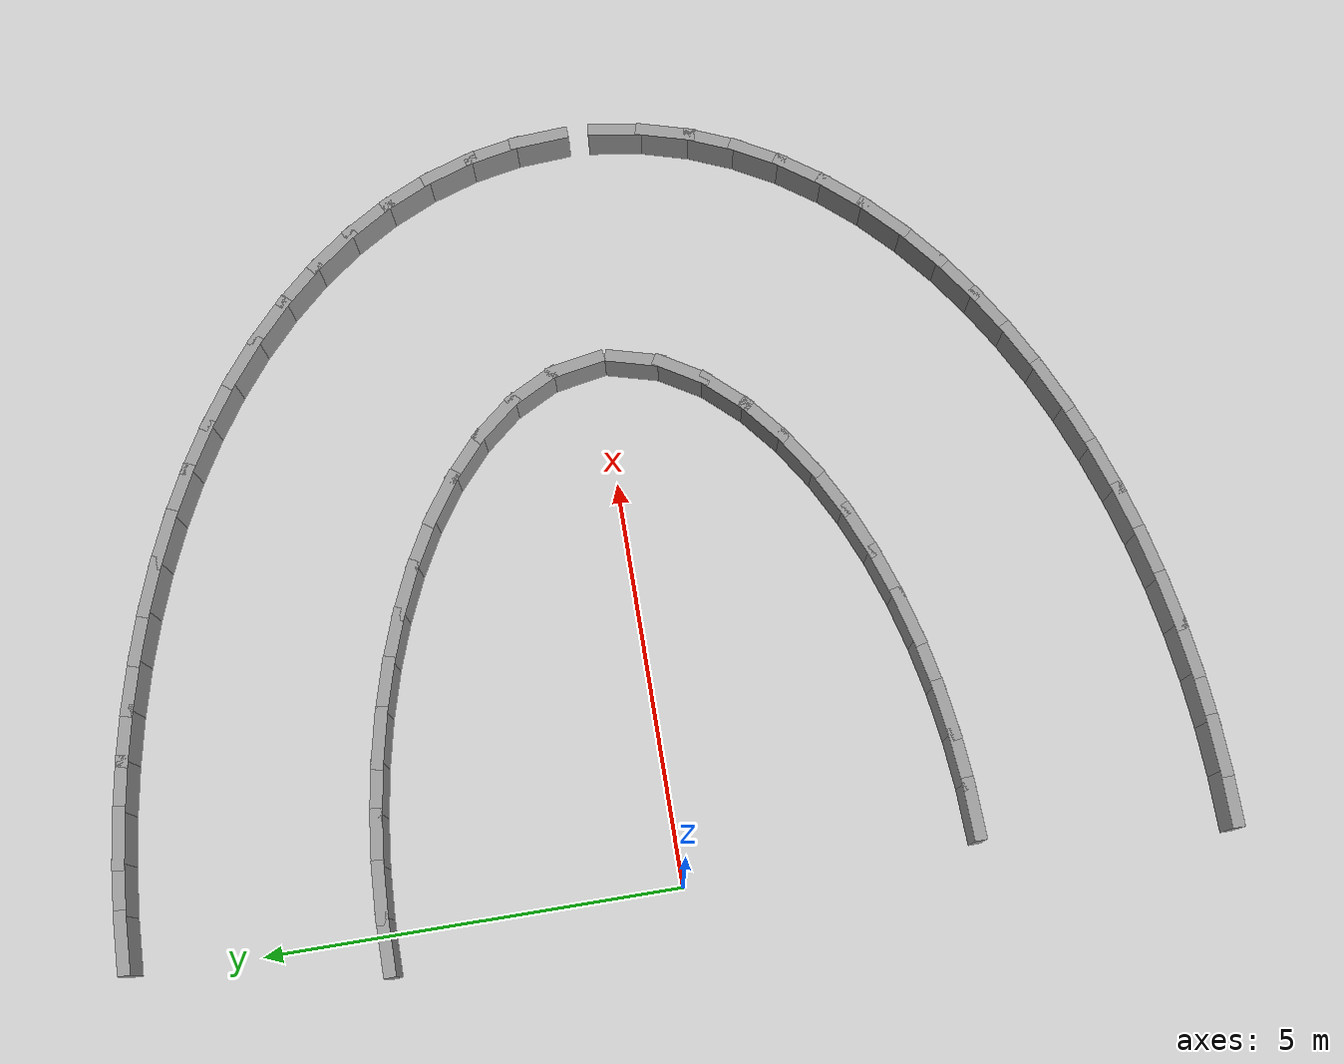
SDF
<sdf version="1.7">
 <world name="default">
  <model name="ground_plane">
   <static>1</static>
   <link name="link">
    <collision name="collision">
     <geometry><plane><normal>0 0 1</normal><size>100 100</size></plane></geometry>
     <surface><friction><ode><mu>100</mu><mu2>50</mu2></ode></friction></surface>
    </collision>
    <visual name="visual">
     <cast_shadows>0</cast_shadows>
     <geometry><plane><normal>0 0 1</normal><size>100 100</size></plane></geometry>
     <material>
      <script><uri>file://media/materials/scripts/gazebo.material</uri><name>Gazebo/Grey</name></script>
     </material>
    </visual>
   </link>
  </model>
  <model name="oval_loop">
   <link name="Wall_0">
    <collision name="Wall_0_Collision">
     <geometry><box><size>0.7470 0.1500 0.6000</size></box></geometry>
     <pose>0 0 0.3000 0 -0 0</pose>
    </collision>
    <visual name="Wall_0_Visual">
     <pose>0 0 0.3000 0 -0 0</pose>
     <geometry><box><size>0.7470 0.1500 0.6000</size></box></geometry>
     <material>
      <script><uri>file://media/materials/scripts/gazebo.material</uri><name>Gazebo/Grey</name></script>
      <ambient>1 1 1 1</ambient>
     </material>
    </visual>
    <pose>6.4471 0.2938 0 0 -0 1.74890</pose>
   </link>
   <link name="Wall_1">
    <collision name="Wall_1_Collision">
     <geometry><box><size>0.7484 0.1500 0.6000</size></box></geometry>
     <pose>0 0 0.3000 0 -0 0</pose>
    </collision>
    <visual name="Wall_1_Visual">
     <pose>0 0 0.3000 0 -0 0</pose>
     <geometry><box><size>0.7484 0.1500 0.6000</size></box></geometry>
     <material>
      <script><uri>file://media/materials/scripts/gazebo.material</uri><name>Gazebo/Grey</name></script>
      <ambient>1 1 1 1</ambient>
     </material>
    </visual>
    <pose>6.2561 0.8530 0 0 -0 2.05053</pose>
   </link>
   <link name="Wall_2">
    <collision name="Wall_2_Collision">
     <geometry><box><size>0.7492 0.1500 0.6000</size></box></geometry>
     <pose>0 0 0.3000 0 -0 0</pose>
    </collision>
    <visual name="Wall_2_Visual">
     <pose>0 0 0.3000 0 -0 0</pose>
     <geometry><box><size>0.7492 0.1500 0.6000</size></box></geometry>
     <material>
      <script><uri>file://media/materials/scripts/gazebo.material</uri><name>Gazebo/Grey</name></script>
      <ambient>1 1 1 1</ambient>
     </material>
    </visual>
    <pose>5.9261 1.3484 0 0 -0 2.26618</pose>
   </link>
   <link name="Wall_3">
    <collision name="Wall_3_Collision">
     <geometry><box><size>0.7495 0.1500 0.6000</size></box></geometry>
     <pose>0 0 0.3000 0 -0 0</pose>
    </collision>
    <visual name="Wall_3_Visual">
     <pose>0 0 0.3000 0 -0 0</pose>
     <geometry><box><size>0.7495 0.1500 0.6000</size></box></geometry>
     <material>
      <script><uri>file://media/materials/scripts/gazebo.material</uri><name>Gazebo/Grey</name></script>
      <ambient>1 1 1 1</ambient>
     </material>
    </visual>
    <pose>5.5084 1.7757 0 0 -0 2.42343</pose>
   </link>
   <link name="Wall_4">
    <collision name="Wall_4_Collision">
     <geometry><box><size>0.7497 0.1500 0.6000</size></box></geometry>
     <pose>0 0 0.3000 0 -0 0</pose>
    </collision>
    <visual name="Wall_4_Visual">
     <pose>0 0 0.3000 0 -0 0</pose>
     <geometry><box><size>0.7497 0.1500 0.6000</size></box></geometry>
     <material>
      <script><uri>file://media/materials/scripts/gazebo.material</uri><name>Gazebo/Grey</name></script>
      <ambient>1 1 1 1</ambient>
     </material>
    </visual>
    <pose>5.0346 2.1414 0 0 -0 2.54512</pose>
   </link>
   <link name="Wall_5">
    <collision name="Wall_5_Collision">
     <geometry><box><size>0.7498 0.1500 0.6000</size></box></geometry>
     <pose>0 0 0.3000 0 -0 0</pose>
    </collision>
    <visual name="Wall_5_Visual">
     <pose>0 0 0.3000 0 -0 0</pose>
     <geometry><box><size>0.7498 0.1500 0.6000</size></box></geometry>
     <material>
      <script><uri>file://media/materials/scripts/gazebo.material</uri><name>Gazebo/Grey</name></script>
      <ambient>1 1 1 1</ambient>
     </material>
    </visual>
    <pose>4.5230 2.4529 0 0 -0 2.64436</pose>
   </link>
   <link name="Wall_6">
    <collision name="Wall_6_Collision">
     <geometry><box><size>0.7498 0.1500 0.6000</size></box></geometry>
     <pose>0 0 0.3000 0 -0 0</pose>
    </collision>
    <visual name="Wall_6_Visual">
     <pose>0 0 0.3000 0 -0 0</pose>
     <geometry><box><size>0.7498 0.1500 0.6000</size></box></geometry>
     <material>
      <script><uri>file://media/materials/scripts/gazebo.material</uri><name>Gazebo/Grey</name></script>
      <ambient>1 1 1 1</ambient>
     </material>
    </visual>
    <pose>3.9847 2.7163 0 0 -0 2.72867</pose>
   </link>
   <link name="Wall_7">
    <collision name="Wall_7_Collision">
     <geometry><box><size>0.7499 0.1500 0.6000</size></box></geometry>
     <pose>0 0 0.3000 0 -0 0</pose>
    </collision>
    <visual name="Wall_7_Visual">
     <pose>0 0 0.3000 0 -0 0</pose>
     <geometry><box><size>0.7499 0.1500 0.6000</size></box></geometry>
     <material>
      <script><uri>file://media/materials/scripts/gazebo.material</uri><name>Gazebo/Grey</name></script>
      <ambient>1 1 1 1</ambient>
     </material>
    </visual>
    <pose>3.4271 2.9363 0 0 -0 2.80269</pose>
   </link>
   <link name="Wall_8">
    <collision name="Wall_8_Collision">
     <geometry><box><size>0.7499 0.1500 0.6000</size></box></geometry>
     <pose>0 0 0.3000 0 -0 0</pose>
    </collision>
    <visual name="Wall_8_Visual">
     <pose>0 0 0.3000 0 -0 0</pose>
     <geometry><box><size>0.7499 0.1500 0.6000</size></box></geometry>
     <material>
      <script><uri>file://media/materials/scripts/gazebo.material</uri><name>Gazebo/Grey</name></script>
      <ambient>1 1 1 1</ambient>
     </material>
    </visual>
    <pose>2.8553 3.1167 0 0 -0 2.86947</pose>
   </link>
   <link name="Wall_9">
    <collision name="Wall_9_Collision">
     <geometry><box><size>0.7499 0.1500 0.6000</size></box></geometry>
     <pose>0 0 0.3000 0 -0 0</pose>
    </collision>
    <visual name="Wall_9_Visual">
     <pose>0 0 0.3000 0 -0 0</pose>
     <geometry><box><size>0.7499 0.1500 0.6000</size></box></geometry>
     <material>
      <script><uri>file://media/materials/scripts/gazebo.material</uri><name>Gazebo/Grey</name></script>
      <ambient>1 1 1 1</ambient>
     </material>
    </visual>
    <pose>2.2731 3.2600 0 0 -0 2.93099</pose>
   </link>
   <link name="Wall_10">
    <collision name="Wall_10_Collision">
     <geometry><box><size>0.7499 0.1500 0.6000</size></box></geometry>
     <pose>0 0 0.3000 0 -0 0</pose>
    </collision>
    <visual name="Wall_10_Visual">
     <pose>0 0 0.3000 0 -0 0</pose>
     <geometry><box><size>0.7499 0.1500 0.6000</size></box></geometry>
     <material>
      <script><uri>file://media/materials/scripts/gazebo.material</uri><name>Gazebo/Grey</name></script>
      <ambient>1 1 1 1</ambient>
     </material>
    </visual>
    <pose>1.6833 3.3683 0 0 -0 2.98885</pose>
   </link>
   <link name="Wall_11">
    <collision name="Wall_11_Collision">
     <geometry><box><size>0.7499 0.1500 0.6000</size></box></geometry>
     <pose>0 0 0.3000 0 -0 0</pose>
    </collision>
    <visual name="Wall_11_Visual">
     <pose>0 0 0.3000 0 -0 0</pose>
     <geometry><box><size>0.7499 0.1500 0.6000</size></box></geometry>
     <material>
      <script><uri>file://media/materials/scripts/gazebo.material</uri><name>Gazebo/Grey</name></script>
      <ambient>1 1 1 1</ambient>
     </material>
    </visual>
    <pose>1.0883 3.4431 0 0 -0 3.04424</pose>
   </link>
   <link name="Wall_12">
    <collision name="Wall_12_Collision">
     <geometry><box><size>0.7499 0.1500 0.6000</size></box></geometry>
     <pose>0 0 0.3000 0 -0 0</pose>
    </collision>
    <visual name="Wall_12_Visual">
     <pose>0 0 0.3000 0 -0 0</pose>
     <geometry><box><size>0.7499 0.1500 0.6000</size></box></geometry>
     <material>
      <script><uri>file://media/materials/scripts/gazebo.material</uri><name>Gazebo/Grey</name></script>
      <ambient>1 1 1 1</ambient>
     </material>
    </visual>
    <pose>0.4900 3.4853 0 0 -0 3.09809</pose>
   </link>
   <link name="Wall_13">
    <collision name="Wall_13_Collision">
     <geometry><box><size>0.7499 0.1500 0.6000</size></box></geometry>
     <pose>0 0 0.3000 0 -0 0</pose>
    </collision>
    <visual name="Wall_13_Visual">
     <pose>0 0 0.3000 0 -0 0</pose>
     <geometry><box><size>0.7499 0.1500 0.6000</size></box></geometry>
     <material>
      <script><uri>file://media/materials/scripts/gazebo.material</uri><name>Gazebo/Grey</name></script>
      <ambient>1 1 1 1</ambient>
     </material>
    </visual>
    <pose>-0.1096 3.4955 0 0 -0 -3.13189</pose>
   </link>
   <link name="Wall_40">
    <collision name="Wall_40_Collision">
     <geometry><box><size>0.7499 0.1500 0.6000</size></box></geometry>
     <pose>0 0 0.3000 0 -0 0</pose>
    </collision>
    <visual name="Wall_40_Visual">
     <pose>0 0 0.3000 0 -0 0</pose>
     <geometry><box><size>0.7499 0.1500 0.6000</size></box></geometry>
     <material>
      <script><uri>file://media/materials/scripts/gazebo.material</uri><name>Gazebo/Grey</name></script>
      <ambient>1 1 1 1</ambient>
     </material>
    </visual>
    <pose>0.3287 -3.4912 0 0 -0 0.02913</pose>
   </link>
   <link name="Wall_41">
    <collision name="Wall_41_Collision">
     <geometry><box><size>0.7499 0.1500 0.6000</size></box></geometry>
     <pose>0 0 0.3000 0 -0 0</pose>
    </collision>
    <visual name="Wall_41_Visual">
     <pose>0 0 0.3000 0 -0 0</pose>
     <geometry><box><size>0.7499 0.1500 0.6000</size></box></geometry>
     <material>
      <script><uri>file://media/materials/scripts/gazebo.material</uri><name>Gazebo/Grey</name></script>
      <ambient>1 1 1 1</ambient>
     </material>
    </visual>
    <pose>0.9275 -3.4577 0 0 -0 0.08277</pose>
   </link>
   <link name="Wall_42">
    <collision name="Wall_42_Collision">
     <geometry><box><size>0.7499 0.1500 0.6000</size></box></geometry>
     <pose>0 0 0.3000 0 -0 0</pose>
    </collision>
    <visual name="Wall_42_Visual">
     <pose>0 0 0.3000 0 -0 0</pose>
     <geometry><box><size>0.7499 0.1500 0.6000</size></box></geometry>
     <material>
      <script><uri>file://media/materials/scripts/gazebo.material</uri><name>Gazebo/Grey</name></script>
      <ambient>1 1 1 1</ambient>
     </material>
    </visual>
    <pose>1.5236 -3.3917 0 0 -0 0.13762</pose>
   </link>
   <link name="Wall_43">
    <collision name="Wall_43_Collision">
     <geometry><box><size>0.7499 0.1500 0.6000</size></box></geometry>
     <pose>0 0 0.3000 0 -0 0</pose>
    </collision>
    <visual name="Wall_43_Visual">
     <pose>0 0 0.3000 0 -0 0</pose>
     <geometry><box><size>0.7499 0.1500 0.6000</size></box></geometry>
     <material>
      <script><uri>file://media/materials/scripts/gazebo.material</uri><name>Gazebo/Grey</name></script>
      <ambient>1 1 1 1</ambient>
     </material>
    </visual>
    <pose>2.1150 -3.2925 0 0 -0 0.19473</pose>
   </link>
   <link name="Wall_44">
    <collision name="Wall_44_Collision">
     <geometry><box><size>0.7499 0.1500 0.6000</size></box></geometry>
     <pose>0 0 0.3000 0 -0 0</pose>
    </collision>
    <visual name="Wall_44_Visual">
     <pose>0 0 0.3000 0 -0 0</pose>
     <geometry><box><size>0.7499 0.1500 0.6000</size></box></geometry>
     <material>
      <script><uri>file://media/materials/scripts/gazebo.material</uri><name>Gazebo/Grey</name></script>
      <ambient>1 1 1 1</ambient>
     </material>
    </visual>
    <pose>2.6995 -3.1588 0 0 -0 0.25515</pose>
   </link>
   <link name="Wall_45">
    <collision name="Wall_45_Collision">
     <geometry><box><size>0.7499 0.1500 0.6000</size></box></geometry>
     <pose>0 0 0.3000 0 -0 0</pose>
    </collision>
    <visual name="Wall_45_Visual">
     <pose>0 0 0.3000 0 -0 0</pose>
     <geometry><box><size>0.7499 0.1500 0.6000</size></box></geometry>
     <material>
      <script><uri>file://media/materials/scripts/gazebo.material</uri><name>Gazebo/Grey</name></script>
      <ambient>1 1 1 1</ambient>
     </material>
    </visual>
    <pose>3.2744 -2.9886 0 0 -0 0.32031</pose>
   </link>
   <link name="Wall_46">
    <collision name="Wall_46_Collision">
     <geometry><box><size>0.7499 0.1500 0.6000</size></box></geometry>
     <pose>0 0 0.3000 0 -0 0</pose>
    </collision>
    <visual name="Wall_46_Visual">
     <pose>0 0 0.3000 0 -0 0</pose>
     <geometry><box><size>0.7499 0.1500 0.6000</size></box></geometry>
     <material>
      <script><uri>file://media/materials/scripts/gazebo.material</uri><name>Gazebo/Grey</name></script>
      <ambient>1 1 1 1</ambient>
     </material>
    </visual>
    <pose>3.8363 -2.7796 0 0 -0 0.39212</pose>
   </link>
   <link name="Wall_47">
    <collision name="Wall_47_Collision">
     <geometry><box><size>0.7498 0.1500 0.6000</size></box></geometry>
     <pose>0 0 0.3000 0 -0 0</pose>
    </collision>
    <visual name="Wall_47_Visual">
     <pose>0 0 0.3000 0 -0 0</pose>
     <geometry><box><size>0.7498 0.1500 0.6000</size></box></geometry>
     <material>
      <script><uri>file://media/materials/scripts/gazebo.material</uri><name>Gazebo/Grey</name></script>
      <ambient>1 1 1 1</ambient>
     </material>
    </visual>
    <pose>4.3804 -2.5283 0 0 -0 0.47332</pose>
   </link>
   <link name="Wall_48">
    <collision name="Wall_48_Collision">
     <geometry><box><size>0.7497 0.1500 0.6000</size></box></geometry>
     <pose>0 0 0.3000 0 -0 0</pose>
    </collision>
    <visual name="Wall_48_Visual">
     <pose>0 0 0.3000 0 -0 0</pose>
     <geometry><box><size>0.7497 0.1500 0.6000</size></box></geometry>
     <material>
      <script><uri>file://media/materials/scripts/gazebo.material</uri><name>Gazebo/Grey</name></script>
      <ambient>1 1 1 1</ambient>
     </material>
    </visual>
    <pose>4.9001 -2.2302 0 0 -0 0.56794</pose>
   </link>
   <link name="Wall_49">
    <collision name="Wall_49_Collision">
     <geometry><box><size>0.7496 0.1500 0.6000</size></box></geometry>
     <pose>0 0 0.3000 0 -0 0</pose>
    </collision>
    <visual name="Wall_49_Visual">
     <pose>0 0 0.3000 0 -0 0</pose>
     <geometry><box><size>0.7496 0.1500 0.6000</size></box></geometry>
     <material>
      <script><uri>file://media/materials/scripts/gazebo.material</uri><name>Gazebo/Grey</name></script>
      <ambient>1 1 1 1</ambient>
     </material>
    </visual>
    <pose>5.3855 -1.8798 0 0 -0 0.68260</pose>
   </link>
   <link name="Wall_50">
    <collision name="Wall_50_Collision">
     <geometry><box><size>0.7493 0.1500 0.6000</size></box></geometry>
     <pose>0 0 0.3000 0 -0 0</pose>
    </collision>
    <visual name="Wall_50_Visual">
     <pose>0 0 0.3000 0 -0 0</pose>
     <geometry><box><size>0.7493 0.1500 0.6000</size></box></geometry>
     <material>
      <script><uri>file://media/materials/scripts/gazebo.material</uri><name>Gazebo/Grey</name></script>
      <ambient>1 1 1 1</ambient>
     </material>
    </visual>
    <pose>5.8207 -1.4699 0 0 -0 0.82854</pose>
   </link>
   <link name="Wall_51">
    <collision name="Wall_51_Collision">
     <geometry><box><size>0.7487 0.1500 0.6000</size></box></geometry>
     <pose>0 0 0.3000 0 -0 0</pose>
    </collision>
    <visual name="Wall_51_Visual">
     <pose>0 0 0.3000 0 -0 0</pose>
     <geometry><box><size>0.7487 0.1500 0.6000</size></box></geometry>
     <material>
      <script><uri>file://media/materials/scripts/gazebo.material</uri><name>Gazebo/Grey</name></script>
      <ambient>1 1 1 1</ambient>
     </material>
    </visual>
    <pose>6.1785 -0.9931 0 0 -0 1.02552</pose>
   </link>
   <link name="Wall_52">
    <collision name="Wall_52_Collision">
     <geometry><box><size>0.7474 0.1500 0.6000</size></box></geometry>
     <pose>0 0 0.3000 0 -0 0</pose>
    </collision>
    <visual name="Wall_52_Visual">
     <pose>0 0 0.3000 0 -0 0</pose>
     <geometry><box><size>0.7474 0.1500 0.6000</size></box></geometry>
     <material>
      <script><uri>file://media/materials/scripts/gazebo.material</uri><name>Gazebo/Grey</name></script>
      <ambient>1 1 1 1</ambient>
     </material>
    </visual>
    <pose>6.4129 -0.4492 0 0 -0 1.30267</pose>
   </link>
   <link name="Wall_53">
    <collision name="Wall_53_Collision">
     <geometry><box><size>0.7496 0.1500 0.6000</size></box></geometry>
     <pose>0 0 0.3000 0 -0 0</pose>
    </collision>
    <visual name="Wall_53_Visual">
     <pose>0 0 0.3000 0 -0 0</pose>
     <geometry><box><size>0.7496 0.1500 0.6000</size></box></geometry>
     <material>
      <script><uri>file://media/materials/scripts/gazebo.material</uri><name>Gazebo/Grey</name></script>
      <ambient>1 1 1 1</ambient>
     </material>
    </visual>
    <pose>9.4806 0.2992 0 0 -0 1.63562</pose>
   </link>
   <link name="Wall_54">
    <collision name="Wall_54_Collision">
     <geometry><box><size>0.7496 0.1500 0.6000</size></box></geometry>
     <pose>0 0 0.3000 0 -0 0</pose>
    </collision>
    <visual name="Wall_54_Visual">
     <pose>0 0 0.3000 0 -0 0</pose>
     <geometry><box><size>0.7496 0.1500 0.6000</size></box></geometry>
     <material>
      <script><uri>file://media/materials/scripts/gazebo.material</uri><name>Gazebo/Grey</name></script>
      <ambient>1 1 1 1</ambient>
     </material>
    </visual>
    <pose>9.4037 0.8926 0 0 -0 1.76368</pose>
   </link>
   <link name="Wall_55">
    <collision name="Wall_55_Collision">
     <geometry><box><size>0.7496 0.1500 0.6000</size></box></geometry>
     <pose>0 0 0.3000 0 -0 0</pose>
    </collision>
    <visual name="Wall_55_Visual">
     <pose>0 0 0.3000 0 -0 0</pose>
     <geometry><box><size>0.7496 0.1500 0.6000</size></box></geometry>
     <material>
      <script><uri>file://media/materials/scripts/gazebo.material</uri><name>Gazebo/Grey</name></script>
      <ambient>1 1 1 1</ambient>
     </material>
    </visual>
    <pose>9.2527 1.4716 0 0 -0 1.88816</pose>
   </link>
   <link name="Wall_56">
    <collision name="Wall_56_Collision">
     <geometry><box><size>0.7497 0.1500 0.6000</size></box></geometry>
     <pose>0 0 0.3000 0 -0 0</pose>
    </collision>
    <visual name="Wall_56_Visual">
     <pose>0 0 0.3000 0 -0 0</pose>
     <geometry><box><size>0.7497 0.1500 0.6000</size></box></geometry>
     <material>
      <script><uri>file://media/materials/scripts/gazebo.material</uri><name>Gazebo/Grey</name></script>
      <ambient>1 1 1 1</ambient>
     </material>
    </visual>
    <pose>9.0325 2.0283 0 0 -0 2.00658</pose>
   </link>
   <link name="Wall_57">
    <collision name="Wall_57_Collision">
     <geometry><box><size>0.7497 0.1500 0.6000</size></box></geometry>
     <pose>0 0 0.3000 0 -0 0</pose>
    </collision>
    <visual name="Wall_57_Visual">
     <pose>0 0 0.3000 0 -0 0</pose>
     <geometry><box><size>0.7497 0.1500 0.6000</size></box></geometry>
     <material>
      <script><uri>file://media/materials/scripts/gazebo.material</uri><name>Gazebo/Grey</name></script>
      <ambient>1 1 1 1</ambient>
     </material>
    </visual>
    <pose>8.7500 2.5562 0 0 -0 2.11779</pose>
   </link>
   <link name="Wall_58">
    <collision name="Wall_58_Collision">
     <geometry><box><size>0.7498 0.1500 0.6000</size></box></geometry>
     <pose>0 0 0.3000 0 -0 0</pose>
    </collision>
    <visual name="Wall_58_Visual">
     <pose>0 0 0.3000 0 -0 0</pose>
     <geometry><box><size>0.7498 0.1500 0.6000</size></box></geometry>
     <material>
      <script><uri>file://media/materials/scripts/gazebo.material</uri><name>Gazebo/Grey</name></script>
      <ambient>1 1 1 1</ambient>
     </material>
    </visual>
    <pose>8.4125 3.0510 0 0 -0 2.22088</pose>
   </link>
   <link name="Wall_59">
    <collision name="Wall_59_Collision">
     <geometry><box><size>0.7498 0.1500 0.6000</size></box></geometry>
     <pose>0 0 0.3000 0 -0 0</pose>
    </collision>
    <visual name="Wall_59_Visual">
     <pose>0 0 0.3000 0 -0 0</pose>
     <geometry><box><size>0.7498 0.1500 0.6000</size></box></geometry>
     <material>
      <script><uri>file://media/materials/scripts/gazebo.material</uri><name>Gazebo/Grey</name></script>
      <ambient>1 1 1 1</ambient>
     </material>
    </visual>
    <pose>8.0278 3.5102 0 0 -0 2.31564</pose>
   </link>
   <link name="Wall_60">
    <collision name="Wall_60_Collision">
     <geometry><box><size>0.7498 0.1500 0.6000</size></box></geometry>
     <pose>0 0 0.3000 0 -0 0</pose>
    </collision>
    <visual name="Wall_60_Visual">
     <pose>0 0 0.3000 0 -0 0</pose>
     <geometry><box><size>0.7498 0.1500 0.6000</size></box></geometry>
     <material>
      <script><uri>file://media/materials/scripts/gazebo.material</uri><name>Gazebo/Grey</name></script>
      <ambient>1 1 1 1</ambient>
     </material>
    </visual>
    <pose>7.6028 3.9328 0 0 -0 2.40239</pose>
   </link>
   <link name="Wall_61">
    <collision name="Wall_61_Collision">
     <geometry><box><size>0.7499 0.1500 0.6000</size></box></geometry>
     <pose>0 0 0.3000 0 -0 0</pose>
    </collision>
    <visual name="Wall_61_Visual">
     <pose>0 0 0.3000 0 -0 0</pose>
     <geometry><box><size>0.7499 0.1500 0.6000</size></box></geometry>
     <material>
      <script><uri>file://media/materials/scripts/gazebo.material</uri><name>Gazebo/Grey</name></script>
      <ambient>1 1 1 1</ambient>
     </material>
    </visual>
    <pose>7.1442 4.3187 0 0 -0 2.48174</pose>
   </link>
   <link name="Wall_62">
    <collision name="Wall_62_Collision">
     <geometry><box><size>0.7499 0.1500 0.6000</size></box></geometry>
     <pose>0 0 0.3000 0 -0 0</pose>
    </collision>
    <visual name="Wall_62_Visual">
     <pose>0 0 0.3000 0 -0 0</pose>
     <geometry><box><size>0.7499 0.1500 0.6000</size></box></geometry>
     <material>
      <script><uri>file://media/materials/scripts/gazebo.material</uri><name>Gazebo/Grey</name></script>
      <ambient>1 1 1 1</ambient>
     </material>
    </visual>
    <pose>6.6576 4.6687 0 0 -0 2.55445</pose>
   </link>
   <link name="Wall_63">
    <collision name="Wall_63_Collision">
     <geometry><box><size>0.7499 0.1500 0.6000</size></box></geometry>
     <pose>0 0 0.3000 0 -0 0</pose>
    </collision>
    <visual name="Wall_63_Visual">
     <pose>0 0 0.3000 0 -0 0</pose>
     <geometry><box><size>0.7499 0.1500 0.6000</size></box></geometry>
     <material>
      <script><uri>file://media/materials/scripts/gazebo.material</uri><name>Gazebo/Grey</name></script>
      <ambient>1 1 1 1</ambient>
     </material>
    </visual>
    <pose>6.1476 4.9840 0 0 -0 2.62131</pose>
   </link>
   <link name="Wall_64">
    <collision name="Wall_64_Collision">
     <geometry><box><size>0.7499 0.1500 0.6000</size></box></geometry>
     <pose>0 0 0.3000 0 -0 0</pose>
    </collision>
    <visual name="Wall_64_Visual">
     <pose>0 0 0.3000 0 -0 0</pose>
     <geometry><box><size>0.7499 0.1500 0.6000</size></box></geometry>
     <material>
      <script><uri>file://media/materials/scripts/gazebo.material</uri><name>Gazebo/Grey</name></script>
      <ambient>1 1 1 1</ambient>
     </material>
    </visual>
    <pose>5.6184 5.2658 0 0 -0 2.68310</pose>
   </link>
   <link name="Wall_65">
    <collision name="Wall_65_Collision">
     <geometry><box><size>0.7499 0.1500 0.6000</size></box></geometry>
     <pose>0 0 0.3000 0 -0 0</pose>
    </collision>
    <visual name="Wall_65_Visual">
     <pose>0 0 0.3000 0 -0 0</pose>
     <geometry><box><size>0.7499 0.1500 0.6000</size></box></geometry>
     <material>
      <script><uri>file://media/materials/scripts/gazebo.material</uri><name>Gazebo/Grey</name></script>
      <ambient>1 1 1 1</ambient>
     </material>
    </visual>
    <pose>5.0732 5.5157 0 0 -0 2.74059</pose>
   </link>
   <link name="Wall_66">
    <collision name="Wall_66_Collision">
     <geometry><box><size>0.7499 0.1500 0.6000</size></box></geometry>
     <pose>0 0 0.3000 0 -0 0</pose>
    </collision>
    <visual name="Wall_66_Visual">
     <pose>0 0 0.3000 0 -0 0</pose>
     <geometry><box><size>0.7499 0.1500 0.6000</size></box></geometry>
     <material>
      <script><uri>file://media/materials/scripts/gazebo.material</uri><name>Gazebo/Grey</name></script>
      <ambient>1 1 1 1</ambient>
     </material>
    </visual>
    <pose>4.5150 5.7348 0 0 -0 2.79453</pose>
   </link>
   <link name="Wall_67">
    <collision name="Wall_67_Collision">
     <geometry><box><size>0.7499 0.1500 0.6000</size></box></geometry>
     <pose>0 0 0.3000 0 -0 0</pose>
    </collision>
    <visual name="Wall_67_Visual">
     <pose>0 0 0.3000 0 -0 0</pose>
     <geometry><box><size>0.7499 0.1500 0.6000</size></box></geometry>
     <material>
      <script><uri>file://media/materials/scripts/gazebo.material</uri><name>Gazebo/Grey</name></script>
      <ambient>1 1 1 1</ambient>
     </material>
    </visual>
    <pose>3.9460 5.9244 0 0 -0 2.84534</pose>
   </link>
   <link name="Wall_68">
    <collision name="Wall_68_Collision">
     <geometry><box><size>0.7499 0.1500 0.6000</size></box></geometry>
     <pose>0 0 0.3000 0 -0 0</pose>
    </collision>
    <visual name="Wall_68_Visual">
     <pose>0 0 0.3000 0 -0 0</pose>
     <geometry><box><size>0.7499 0.1500 0.6000</size></box></geometry>
     <material>
      <script><uri>file://media/materials/scripts/gazebo.material</uri><name>Gazebo/Grey</name></script>
      <ambient>1 1 1 1</ambient>
     </material>
    </visual>
    <pose>3.3683 6.0855 0 0 -0 2.89376</pose>
   </link>
   <link name="Wall_69">
    <collision name="Wall_69_Collision">
     <geometry><box><size>0.7499 0.1500 0.6000</size></box></geometry>
     <pose>0 0 0.3000 0 -0 0</pose>
    </collision>
    <visual name="Wall_69_Visual">
     <pose>0 0 0.3000 0 -0 0</pose>
     <geometry><box><size>0.7499 0.1500 0.6000</size></box></geometry>
     <material>
      <script><uri>file://media/materials/scripts/gazebo.material</uri><name>Gazebo/Grey</name></script>
      <ambient>1 1 1 1</ambient>
     </material>
    </visual>
    <pose>2.7836 6.2192 0 0 -0 2.94013</pose>
   </link>
   <link name="Wall_70">
    <collision name="Wall_70_Collision">
     <geometry><box><size>0.7500 0.1500 0.6000</size></box></geometry>
     <pose>0 0 0.3000 0 -0 0</pose>
    </collision>
    <visual name="Wall_70_Visual">
     <pose>0 0 0.3000 0 -0 0</pose>
     <geometry><box><size>0.7500 0.1500 0.6000</size></box></geometry>
     <material>
      <script><uri>file://media/materials/scripts/gazebo.material</uri><name>Gazebo/Grey</name></script>
      <ambient>1 1 1 1</ambient>
     </material>
    </visual>
    <pose>2.1934 6.3260 0 0 -0 2.98491</pose>
   </link>
   <link name="Wall_71">
    <collision name="Wall_71_Collision">
     <geometry><box><size>0.7500 0.1500 0.6000</size></box></geometry>
     <pose>0 0 0.3000 0 -0 0</pose>
    </collision>
    <visual name="Wall_71_Visual">
     <pose>0 0 0.3000 0 -0 0</pose>
     <geometry><box><size>0.7500 0.1500 0.6000</size></box></geometry>
     <material>
      <script><uri>file://media/materials/scripts/gazebo.material</uri><name>Gazebo/Grey</name></script>
      <ambient>1 1 1 1</ambient>
     </material>
    </visual>
    <pose>1.5990 6.4067 0 0 -0 3.02848</pose>
   </link>
   <link name="Wall_72">
    <collision name="Wall_72_Collision">
     <geometry><box><size>0.7500 0.1500 0.6000</size></box></geometry>
     <pose>0 0 0.3000 0 -0 0</pose>
    </collision>
    <visual name="Wall_72_Visual">
     <pose>0 0 0.3000 0 -0 0</pose>
     <geometry><box><size>0.7500 0.1500 0.6000</size></box></geometry>
     <material>
      <script><uri>file://media/materials/scripts/gazebo.material</uri><name>Gazebo/Grey</name></script>
      <ambient>1 1 1 1</ambient>
     </material>
    </visual>
    <pose>1.0017 6.4616 0 0 -0 3.07120</pose>
   </link>
   <link name="Wall_73">
    <collision name="Wall_73_Collision">
     <geometry><box><size>0.7500 0.1500 0.6000</size></box></geometry>
     <pose>0 0 0.3000 0 -0 0</pose>
    </collision>
    <visual name="Wall_73_Visual">
     <pose>0 0 0.3000 0 -0 0</pose>
     <geometry><box><size>0.7500 0.1500 0.6000</size></box></geometry>
     <material>
      <script><uri>file://media/materials/scripts/gazebo.material</uri><name>Gazebo/Grey</name></script>
      <ambient>1 1 1 1</ambient>
     </material>
    </visual>
    <pose>0.4026 6.4912 0 0 -0 3.11342</pose>
   </link>
   <link name="Wall_116">
    <collision name="Wall_116_Collision">
     <geometry><box><size>0.7500 0.1500 0.6000</size></box></geometry>
     <pose>0 0 0.3000 0 -0 0</pose>
    </collision>
    <visual name="Wall_116_Visual">
     <pose>0 0 0.3000 0 -0 0</pose>
     <geometry><box><size>0.7500 0.1500 0.6000</size></box></geometry>
     <material>
      <script><uri>file://media/materials/scripts/gazebo.material</uri><name>Gazebo/Grey</name></script>
      <ambient>1 1 1 1</ambient>
     </material>
    </visual>
    <pose>-0.0082 -6.4968 0 0 -0 -0.00058</pose>
   </link>
   <link name="Wall_117">
    <collision name="Wall_117_Collision">
     <geometry><box><size>0.7500 0.1500 0.6000</size></box></geometry>
     <pose>0 0 0.3000 0 -0 0</pose>
    </collision>
    <visual name="Wall_117_Visual">
     <pose>0 0 0.3000 0 -0 0</pose>
     <geometry><box><size>0.7500 0.1500 0.6000</size></box></geometry>
     <material>
      <script><uri>file://media/materials/scripts/gazebo.material</uri><name>Gazebo/Grey</name></script>
      <ambient>1 1 1 1</ambient>
     </material>
    </visual>
    <pose>0.5915 -6.4846 0 0 -0 0.04143</pose>
   </link>
   <link name="Wall_118">
    <collision name="Wall_118_Collision">
     <geometry><box><size>0.7500 0.1500 0.6000</size></box></geometry>
     <pose>0 0 0.3000 0 -0 0</pose>
    </collision>
    <visual name="Wall_118_Visual">
     <pose>0 0 0.3000 0 -0 0</pose>
     <geometry><box><size>0.7500 0.1500 0.6000</size></box></geometry>
     <material>
      <script><uri>file://media/materials/scripts/gazebo.material</uri><name>Gazebo/Grey</name></script>
      <ambient>1 1 1 1</ambient>
     </material>
    </visual>
    <pose>1.1901 -6.4471 0 0 -0 0.08377</pose>
   </link>
   <link name="Wall_119">
    <collision name="Wall_119_Collision">
     <geometry><box><size>0.7500 0.1500 0.6000</size></box></geometry>
     <pose>0 0 0.3000 0 -0 0</pose>
    </collision>
    <visual name="Wall_119_Visual">
     <pose>0 0 0.3000 0 -0 0</pose>
     <geometry><box><size>0.7500 0.1500 0.6000</size></box></geometry>
     <material>
      <script><uri>file://media/materials/scripts/gazebo.material</uri><name>Gazebo/Grey</name></script>
      <ambient>1 1 1 1</ambient>
     </material>
    </visual>
    <pose>1.7866 -6.3840 0 0 -0 0.12673</pose>
   </link>
   <link name="Wall_120">
    <collision name="Wall_120_Collision">
     <geometry><box><size>0.7500 0.1500 0.6000</size></box></geometry>
     <pose>0 0 0.3000 0 -0 0</pose>
    </collision>
    <visual name="Wall_120_Visual">
     <pose>0 0 0.3000 0 -0 0</pose>
     <geometry><box><size>0.7500 0.1500 0.6000</size></box></geometry>
     <material>
      <script><uri>file://media/materials/scripts/gazebo.material</uri><name>Gazebo/Grey</name></script>
      <ambient>1 1 1 1</ambient>
     </material>
    </visual>
    <pose>2.3798 -6.2952 0 0 -0 0.17064</pose>
   </link>
   <link name="Wall_121">
    <collision name="Wall_121_Collision">
     <geometry><box><size>0.7499 0.1500 0.6000</size></box></geometry>
     <pose>0 0 0.3000 0 -0 0</pose>
    </collision>
    <visual name="Wall_121_Visual">
     <pose>0 0 0.3000 0 -0 0</pose>
     <geometry><box><size>0.7499 0.1500 0.6000</size></box></geometry>
     <material>
      <script><uri>file://media/materials/scripts/gazebo.material</uri><name>Gazebo/Grey</name></script>
      <ambient>1 1 1 1</ambient>
     </material>
    </visual>
    <pose>2.9684 -6.1800 0 0 -0 0.21587</pose>
   </link>
   <link name="Wall_122">
    <collision name="Wall_122_Collision">
     <geometry><box><size>0.7499 0.1500 0.6000</size></box></geometry>
     <pose>0 0 0.3000 0 -0 0</pose>
    </collision>
    <visual name="Wall_122_Visual">
     <pose>0 0 0.3000 0 -0 0</pose>
     <geometry><box><size>0.7499 0.1500 0.6000</size></box></geometry>
     <material>
      <script><uri>file://media/materials/scripts/gazebo.material</uri><name>Gazebo/Grey</name></script>
      <ambient>1 1 1 1</ambient>
     </material>
    </visual>
    <pose>3.5511 -6.0378 0 0 -0 0.26287</pose>
   </link>
   <link name="Wall_123">
    <collision name="Wall_123_Collision">
     <geometry><box><size>0.7499 0.1500 0.6000</size></box></geometry>
     <pose>0 0 0.3000 0 -0 0</pose>
    </collision>
    <visual name="Wall_123_Visual">
     <pose>0 0 0.3000 0 -0 0</pose>
     <geometry><box><size>0.7499 0.1500 0.6000</size></box></geometry>
     <material>
      <script><uri>file://media/materials/scripts/gazebo.material</uri><name>Gazebo/Grey</name></script>
      <ambient>1 1 1 1</ambient>
     </material>
    </visual>
    <pose>4.1263 -5.8678 0 0 -0 0.31196</pose>
   </link>
   <link name="Wall_124">
    <collision name="Wall_124_Collision">
     <geometry><box><size>0.7499 0.1500 0.6000</size></box></geometry>
     <pose>0 0 0.3000 0 -0 0</pose>
    </collision>
    <visual name="Wall_124_Visual">
     <pose>0 0 0.3000 0 -0 0</pose>
     <geometry><box><size>0.7499 0.1500 0.6000</size></box></geometry>
     <material>
      <script><uri>file://media/materials/scripts/gazebo.material</uri><name>Gazebo/Grey</name></script>
      <ambient>1 1 1 1</ambient>
     </material>
    </visual>
    <pose>4.6921 -5.6690 0 0 -0 0.36371</pose>
   </link>
   <link name="Wall_125">
    <collision name="Wall_125_Collision">
     <geometry><box><size>0.7499 0.1500 0.6000</size></box></geometry>
     <pose>0 0 0.3000 0 -0 0</pose>
    </collision>
    <visual name="Wall_125_Visual">
     <pose>0 0 0.3000 0 -0 0</pose>
     <geometry><box><size>0.7499 0.1500 0.6000</size></box></geometry>
     <material>
      <script><uri>file://media/materials/scripts/gazebo.material</uri><name>Gazebo/Grey</name></script>
      <ambient>1 1 1 1</ambient>
     </material>
    </visual>
    <pose>5.2465 -5.4403 0 0 -0 0.41865</pose>
   </link>
   <link name="Wall_126">
    <collision name="Wall_126_Collision">
     <geometry><box><size>0.7499 0.1500 0.6000</size></box></geometry>
     <pose>0 0 0.3000 0 -0 0</pose>
    </collision>
    <visual name="Wall_126_Visual">
     <pose>0 0 0.3000 0 -0 0</pose>
     <geometry><box><size>0.7499 0.1500 0.6000</size></box></geometry>
     <material>
      <script><uri>file://media/materials/scripts/gazebo.material</uri><name>Gazebo/Grey</name></script>
      <ambient>1 1 1 1</ambient>
     </material>
    </visual>
    <pose>5.7869 -5.1806 0 0 -0 0.47746</pose>
   </link>
   <link name="Wall_127">
    <collision name="Wall_127_Collision">
     <geometry><box><size>0.7499 0.1500 0.6000</size></box></geometry>
     <pose>0 0 0.3000 0 -0 0</pose>
    </collision>
    <visual name="Wall_127_Visual">
     <pose>0 0 0.3000 0 -0 0</pose>
     <geometry><box><size>0.7499 0.1500 0.6000</size></box></geometry>
     <material>
      <script><uri>file://media/materials/scripts/gazebo.material</uri><name>Gazebo/Grey</name></script>
      <ambient>1 1 1 1</ambient>
     </material>
    </visual>
    <pose>6.3105 -4.8883 0 0 -0 0.54080</pose>
   </link>
   <link name="Wall_128">
    <collision name="Wall_128_Collision">
     <geometry><box><size>0.7499 0.1500 0.6000</size></box></geometry>
     <pose>0 0 0.3000 0 -0 0</pose>
    </collision>
    <visual name="Wall_128_Visual">
     <pose>0 0 0.3000 0 -0 0</pose>
     <geometry><box><size>0.7499 0.1500 0.6000</size></box></geometry>
     <material>
      <script><uri>file://media/materials/scripts/gazebo.material</uri><name>Gazebo/Grey</name></script>
      <ambient>1 1 1 1</ambient>
     </material>
    </visual>
    <pose>6.8136 -4.5622 0 0 -0 0.60938</pose>
   </link>
   <link name="Wall_129">
    <collision name="Wall_129_Collision">
     <geometry><box><size>0.7498 0.1500 0.6000</size></box></geometry>
     <pose>0 0 0.3000 0 -0 0</pose>
    </collision>
    <visual name="Wall_129_Visual">
     <pose>0 0 0.3000 0 -0 0</pose>
     <geometry><box><size>0.7498 0.1500 0.6000</size></box></geometry>
     <material>
      <script><uri>file://media/materials/scripts/gazebo.material</uri><name>Gazebo/Grey</name></script>
      <ambient>1 1 1 1</ambient>
     </material>
    </visual>
    <pose>7.2920 -4.2010 0 0 -0 0.68409</pose>
   </link>
   <link name="Wall_130">
    <collision name="Wall_130_Collision">
     <geometry><box><size>0.7498 0.1500 0.6000</size></box></geometry>
     <pose>0 0 0.3000 0 -0 0</pose>
    </collision>
    <visual name="Wall_130_Visual">
     <pose>0 0 0.3000 0 -0 0</pose>
     <geometry><box><size>0.7498 0.1500 0.6000</size></box></geometry>
     <material>
      <script><uri>file://media/materials/scripts/gazebo.material</uri><name>Gazebo/Grey</name></script>
      <ambient>1 1 1 1</ambient>
     </material>
    </visual>
    <pose>7.7406 -3.8036 0 0 -0 0.76569</pose>
   </link>
   <link name="Wall_131">
    <collision name="Wall_131_Collision">
     <geometry><box><size>0.7498 0.1500 0.6000</size></box></geometry>
     <pose>0 0 0.3000 0 -0 0</pose>
    </collision>
    <visual name="Wall_131_Visual">
     <pose>0 0 0.3000 0 -0 0</pose>
     <geometry><box><size>0.7498 0.1500 0.6000</size></box></geometry>
     <material>
      <script><uri>file://media/materials/scripts/gazebo.material</uri><name>Gazebo/Grey</name></script>
      <ambient>1 1 1 1</ambient>
     </material>
    </visual>
    <pose>8.1536 -3.3695 0 0 -0 0.85493</pose>
   </link>
   <link name="Wall_132">
    <collision name="Wall_132_Collision">
     <geometry><box><size>0.7497 0.1500 0.6000</size></box></geometry>
     <pose>0 0 0.3000 0 -0 0</pose>
    </collision>
    <visual name="Wall_132_Visual">
     <pose>0 0 0.3000 0 -0 0</pose>
     <geometry><box><size>0.7497 0.1500 0.6000</size></box></geometry>
     <material>
      <script><uri>file://media/materials/scripts/gazebo.material</uri><name>Gazebo/Grey</name></script>
      <ambient>1 1 1 1</ambient>
     </material>
    </visual>
    <pose>8.5243 -2.8989 0 0 -0 0.95230</pose>
   </link>
   <link name="Wall_133">
    <collision name="Wall_133_Collision">
     <geometry><box><size>0.7497 0.1500 0.6000</size></box></geometry>
     <pose>0 0 0.3000 0 -0 0</pose>
    </collision>
    <visual name="Wall_133_Visual">
     <pose>0 0 0.3000 0 -0 0</pose>
     <geometry><box><size>0.7497 0.1500 0.6000</size></box></geometry>
     <material>
      <script><uri>file://media/materials/scripts/gazebo.material</uri><name>Gazebo/Grey</name></script>
      <ambient>1 1 1 1</ambient>
     </material>
    </visual>
    <pose>8.8453 -2.3933 0 0 -0 1.05793</pose>
   </link>
   <link name="Wall_134">
    <collision name="Wall_134_Collision">
     <geometry><box><size>0.7497 0.1500 0.6000</size></box></geometry>
     <pose>0 0 0.3000 0 -0 0</pose>
    </collision>
    <visual name="Wall_134_Visual">
     <pose>0 0 0.3000 0 -0 0</pose>
     <geometry><box><size>0.7497 0.1500 0.6000</size></box></geometry>
     <material>
      <script><uri>file://media/materials/scripts/gazebo.material</uri><name>Gazebo/Grey</name></script>
      <ambient>1 1 1 1</ambient>
     </material>
    </visual>
    <pose>9.1090 -1.8558 0 0 -0 1.17163</pose>
   </link>
   <link name="Wall_135">
    <collision name="Wall_135_Collision">
     <geometry><box><size>0.7496 0.1500 0.6000</size></box></geometry>
     <pose>0 0 0.3000 0 -0 0</pose>
    </collision>
    <visual name="Wall_135_Visual">
     <pose>0 0 0.3000 0 -0 0</pose>
     <geometry><box><size>0.7496 0.1500 0.6000</size></box></geometry>
     <material>
      <script><uri>file://media/materials/scripts/gazebo.material</uri><name>Gazebo/Grey</name></script>
      <ambient>1 1 1 1</ambient>
     </material>
    </visual>
    <pose>9.3080 -1.2913 0 0 -0 1.29208</pose>
   </link>
   <link name="Wall_136">
    <collision name="Wall_136_Collision">
     <geometry><box><size>0.7496 0.1500 0.6000</size></box></geometry>
     <pose>0 0 0.3000 0 -0 0</pose>
    </collision>
    <visual name="Wall_136_Visual">
     <pose>0 0 0.3000 0 -0 0</pose>
     <geometry><box><size>0.7496 0.1500 0.6000</size></box></geometry>
     <material>
      <script><uri>file://media/materials/scripts/gazebo.material</uri><name>Gazebo/Grey</name></script>
      <ambient>1 1 1 1</ambient>
     </material>
    </visual>
    <pose>9.4361 -0.7068 0 0 -0 1.41798</pose>
   </link>
   <static>1</static>
  </model>
 </world>
</sdf>
